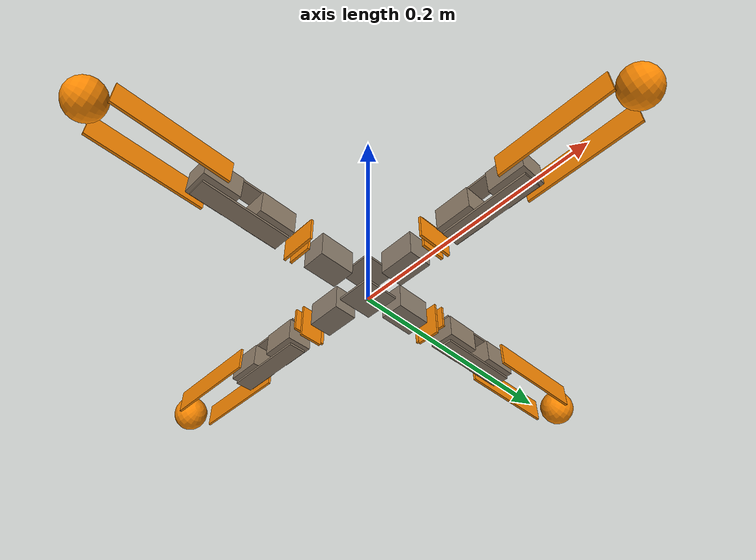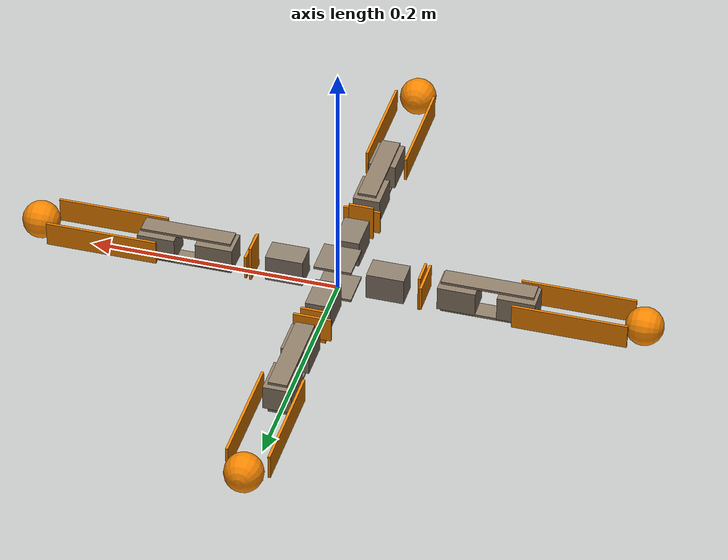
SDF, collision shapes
<?xml version="1.0" ?>
<!-- Generated using onshape-to-robot -->
<!-- OnShape https://cad.onshape.com/documents/11a7f59e37f711d732274fca/w/7807518dc67487ad405722c8/e/5233c6445c575366a6cc0d50 -->
<sdf version="1.7">
    <model name="quadruped_sdf">
        <!-- Link body -->
        <link name="body">
            <inertial>
                <pose relative_to="body">-2.68123e-18 7.95593e-19 0.0143384 0 0 0</pose>
                <mass>0.0808736</mass>
                <inertia>
                    <ixx>7.37408e-05</ixx>
                    <ixy>-7.58445e-21</ixy>
                    <ixz>-2.2764e-21</ixz>
                    <iyy>7.37408e-05</iyy>
                    <iyz>1.71779e-21</iyz>
                    <izz>0.000135878</izz>
                </inertia>
            </inertial>
            <pose>0 0 0 0 -0 0</pose>
            <!-- Part body -->
            <visual name="body_visual_mesh">
                <pose relative_to="body">-4.02184e-18 1.95168e-18 0.0143384 0 -0 0</pose>
                <geometry>
                    <mesh>
                        <uri>model://quadruped_sdf/body.stl</uri>
                    </mesh>
                </geometry>
                <material>
                    <ambient>0.546445 0.490703 0.424602 1.0</ambient>
                    <diffuse>0.546445 0.490703 0.424602 1.0</diffuse>
                    <specular>0.1 0.1 0.1 1</specular>
                    <emissive>0 0 0 0</emissive>
                </material>
            </visual>
            <collision name="body_collision_shapes_1">
                <pose relative_to="body">0 3.46945e-18 0.0275 3.14159 -0 0</pose>
                <geometry>
                    <box>
                        <size>0.03 0.03 0.002</size>
                    </box>
                </geometry>
            </collision>
            <collision name="body_collision_shapes_2">
                <pose relative_to="body">0 0 0.0011 0 -0 0</pose>
                <geometry>
                    <box>
                        <size>0.03 0.03 0.002</size>
                    </box>
                </geometry>
            </collision>
            <collision name="body_collision_shapes_3">
                <pose relative_to="body">-2.48001e-18 -0.0405 0.0143 0 -0 -3.14159</pose>
                <geometry>
                    <box>
                        <size>0.02 0.03 0.022</size>
                    </box>
                </geometry>
            </collision>
            <collision name="body_collision_shapes_4">
                <pose relative_to="body">0.0405 8.66205e-18 0.0143 0 -0 -1.5708</pose>
                <geometry>
                    <box>
                        <size>0.02 0.03 0.022</size>
                    </box>
                </geometry>
            </collision>
            <collision name="body_collision_shapes_5">
                <pose relative_to="body">-2.87964e-18 0.0405 0.0143 0 -0 8.32667e-16</pose>
                <geometry>
                    <box>
                        <size>0.02 0.03 0.022</size>
                    </box>
                </geometry>
            </collision>
            <collision name="body_collision_shapes_6">
                <pose relative_to="body">-0.0405 -2.24473e-18 0.0143 1.45547e-17 3.61151e-16 1.5708</pose>
                <geometry>
                    <box>
                        <size>0.02 0.03 0.022</size>
                    </box>
                </geometry>
            </collision>
        </link>
        <!-- Link doubleu -->
        <link name="doubleu">
            <inertial>
                <pose relative_to="doubleu">4.20868e-19 -0.0203 -0.01615 0 0 0</pose>
                <mass>0.00830698</mass>
                <inertia>
                    <ixx>2.78361e-06</ixx>
                    <ixy>-3.98268e-22</ixy>
                    <ixz>-3.70822e-22</ixz>
                    <iyy>1.9255e-06</iyy>
                    <iyz>1.87309e-22</iyz>
                    <izz>2.78361e-06</izz>
                </inertia>
            </inertial>
            <pose relative_to="leg1_a">0 0 0 0 -0 0</pose>
            <!-- Part doubleu -->
            <visual name="doubleu_visual_mesh">
                <pose relative_to="doubleu">4.20868e-19 -0.0203 -0.01615 -3.14159 1.53921e-15 1.5708</pose>
                <geometry>
                    <mesh>
                        <uri>model://quadruped_sdf/doubleu.stl</uri>
                    </mesh>
                </geometry>
                <material>
                    <ambient>0.972549 0.529412 0.00392157 1.0</ambient>
                    <diffuse>0.972549 0.529412 0.00392157 1.0</diffuse>
                    <specular>0.1 0.1 0.1 1</specular>
                    <emissive>0 0 0 0</emissive>
                </material>
            </visual>
            <collision name="doubleu_collision_shapes_1">
                <pose relative_to="doubleu">-2.25526e-31 -0.0191 -0.01615 1.5708 -1.84604e-32 4.13365e-30</pose>
                <geometry>
                    <box>
                        <size>0.02 0.03 0.002</size>
                    </box>
                </geometry>
            </collision>
            <collision name="doubleu_collision_shapes_2">
                <pose relative_to="doubleu">-4.23155e-18 -0.0215 -0.01615 -1.5708 -1.5708 0</pose>
                <geometry>
                    <box>
                        <size>0.02 0.03 0.002</size>
                    </box>
                </geometry>
            </collision>
        </link>
        <!-- Link platesblock -->
        <link name="platesblock">
            <inertial>
                <pose relative_to="platesblock">5.09544e-15 -0.0315 0.0150372 0 0 0</pose>
                <mass>0.0417755</mass>
                <inertia>
                    <ixx>2.98279e-05</ixx>
                    <ixy>-2.99773e-12</ixy>
                    <ixz>-9.43397e-21</ixz>
                    <iyy>4.6241e-06</iyy>
                    <iyz>2.38053e-19</iyz>
                    <izz>2.99828e-05</izz>
                </inertia>
            </inertial>
            <pose relative_to="leg1_b">0 0 0 0 -0 0</pose>
            <!-- Part platesblock -->
            <visual name="platesblock_visual_mesh">
                <pose relative_to="platesblock">5.09835e-15 -0.0315 0.0150372 -1.5708 -8.04912e-14 1.5708</pose>
                <geometry>
                    <mesh>
                        <uri>model://quadruped_sdf/platesblock.stl</uri>
                    </mesh>
                </geometry>
                <material>
                    <ambient>0.5601 0.491944 0.411121 1.0</ambient>
                    <diffuse>0.5601 0.491944 0.411121 1.0</diffuse>
                    <specular>0.1 0.1 0.1 1</specular>
                    <emissive>0 0 0 0</emissive>
                </material>
            </visual>
            <collision name="platesblock_collision_shapes_1">
                <pose relative_to="platesblock">0.0131 -0.0315 0.015 1.5708 -1.26802e-14 -1.5708</pose>
                <geometry>
                    <box>
                        <size>0.073 0.015 0.002</size>
                    </box>
                </geometry>
            </collision>
            <collision name="platesblock_collision_shapes_2">
                <pose relative_to="platesblock">-0.0132 -0.0315 0.015 1.5708 2.39183e-16 -1.5708</pose>
                <geometry>
                    <box>
                        <size>0.073 0.015 0.002</size>
                    </box>
                </geometry>
            </collision>
            <collision name="platesblock_collision_shapes_3">
                <pose relative_to="platesblock">1.32467e-15 -0.008 0.015 5.55112e-17 -5.55112e-17 1.32212e-13</pose>
                <geometry>
                    <box>
                        <size>0.02 0.03 0.022</size>
                    </box>
                </geometry>
            </collision>
            <collision name="platesblock_collision_shapes_4">
                <pose relative_to="platesblock">8.87894e-15 -0.055 0.015 1.07507e-14 5.55112e-17 -3.14159</pose>
                <geometry>
                    <box>
                        <size>0.02 0.03 0.022</size>
                    </box>
                </geometry>
            </collision>
        </link>
        <!-- Link leg -->
        <link name="leg">
            <inertial>
                <pose relative_to="leg">-1.68362e-17 0.0533786 0.015 0 0 0</pose>
                <mass>0.0154162</mass>
                <inertia>
                    <ixx>2.13816e-05</ixx>
                    <ixy>5.18659e-34</ixy>
                    <ixz>1.18621e-36</ixz>
                    <iyy>3.58407e-06</iyy>
                    <iyz>1.10982e-34</iyz>
                    <izz>1.88204e-05</izz>
                </inertia>
            </inertial>
            <pose relative_to="leg1_c">0 0 0 0 -0 0</pose>
            <!-- Part leg -->
            <visual name="leg_visual_mesh">
                <pose relative_to="leg">-1.73472e-17 0.0533786 0.015 -1.5708 -9.12418e-14 -1.5708</pose>
                <geometry>
                    <mesh>
                        <uri>model://quadruped_sdf/leg.stl</uri>
                    </mesh>
                </geometry>
                <material>
                    <ambient>0.972549 0.529412 0.00392157 1.0</ambient>
                    <diffuse>0.972549 0.529412 0.00392157 1.0</diffuse>
                    <specular>0.1 0.1 0.1 1</specular>
                    <emissive>0 0 0 0</emissive>
                </material>
            </visual>
            <collision name="leg_collision_shapes_1">
                <pose relative_to="leg">1.18955e-18 0.035 -0.001 1.5708 -2.25116e-32 3.79639e-30</pose>
                <geometry>
                    <box>
                        <size>0.02 0.002 0.09</size>
                    </box>
                </geometry>
            </collision>
            <collision name="leg_collision_shapes_2">
                <pose relative_to="leg">1.08167e-18 0.035 0.031 1.5708 -2.25116e-32 3.79639e-30</pose>
                <geometry>
                    <box>
                        <size>0.02 0.002 0.09</size>
                    </box>
                </geometry>
            </collision>
            <collision name="leg_collision_shapes_3">
                <pose relative_to="leg">1.69072e-18 0.09 0.015 1.5708 -2.25116e-32 3.79639e-30</pose>
                <geometry>
                    <sphere>
                        <radius>0.015</radius>
                    </sphere>
                </geometry>
            </collision>
        </link>
        <!-- Joint from platesblock to leg -->
        <joint name="leg1_c" type="revolute">
            <pose relative_to="platesblock">9.9365e-15 -0.063 5.75928e-16 1.07507e-14 5.55112e-17 3.14159</pose>
            <parent>platesblock</parent>
            <child>leg</child>
            <axis>
                <xyz>0 0 1</xyz>
                <limit>
                    <effort>10</effort>
                    <velocity>10</velocity>
                </limit>
                <lower>-3.141592653589793</lower>
                <upper>3.141592653589793</upper>
            </axis>
        </joint>
        <!-- Joint from doubleu to platesblock -->
        <joint name="leg1_b" type="revolute">
            <pose relative_to="doubleu">0.015 -0.0406 -0.01615 -1.11022e-16 -1.5708 0</pose>
            <parent>doubleu</parent>
            <child>platesblock</child>
            <axis>
                <xyz>0 0 1</xyz>
                <limit>
                    <effort>10</effort>
                    <velocity>10</velocity>
                </limit>
                <lower>-3.141592653589793</lower>
                <upper>3.141592653589793</upper>
            </axis>
        </joint>
        <!-- Joint from body to doubleu -->
        <joint name="leg1_a" type="revolute">
            <pose relative_to="body">-0.0485 -8.5303e-18 -0.0007 -3.14159 3.05183e-16 1.5708</pose>
            <parent>body</parent>
            <child>doubleu</child>
            <axis>
                <xyz>0 0 1</xyz>
                <limit>
                    <effort>10</effort>
                    <velocity>10</velocity>
                </limit>
                <lower>-3.141592653589793</lower>
                <upper>3.141592653589793</upper>
            </axis>
        </joint>
        <!-- Link doubleu_2 -->
        <link name="doubleu_2">
            <inertial>
                <pose relative_to="doubleu_2">-2.11219e-17 -0.0203 -0.015 0 0 0</pose>
                <mass>0.00830698</mass>
                <inertia>
                    <ixx>2.78361e-06</ixx>
                    <ixy>-2.00168e-21</ixy>
                    <ixz>-2.69222e-22</ixz>
                    <iyy>1.9255e-06</iyy>
                    <iyz>9.24504e-21</iyz>
                    <izz>2.78361e-06</izz>
                </inertia>
            </inertial>
            <pose relative_to="leg2_a">0 0 0 0 -0 0</pose>
            <!-- Part doubleu_2 -->
            <visual name="doubleu_2_visual_mesh">
                <pose relative_to="doubleu_2">-2.11219e-17 -0.0203 -0.015 3.14159 -1.8612e-16 -3.14159</pose>
                <geometry>
                    <mesh>
                        <uri>model://quadruped_sdf/doubleu_2.stl</uri>
                    </mesh>
                </geometry>
                <material>
                    <ambient>0.972549 0.529412 0.00392157 1.0</ambient>
                    <diffuse>0.972549 0.529412 0.00392157 1.0</diffuse>
                    <specular>0.1 0.1 0.1 1</specular>
                    <emissive>0 0 0 0</emissive>
                </material>
            </visual>
            <collision name="doubleu_2_collision_shapes_1">
                <pose relative_to="doubleu_2">-4.7317e-17 -0.0215 -0.015 -1.5708 -1.5708 0</pose>
                <geometry>
                    <box>
                        <size>0.02 0.03 0.002</size>
                    </box>
                </geometry>
            </collision>
            <collision name="doubleu_2_collision_shapes_2">
                <pose relative_to="doubleu_2">6.16298e-33 -0.0191 -0.015 1.5708 1.44282e-33 -2.03131e-32</pose>
                <geometry>
                    <box>
                        <size>0.02 0.03 0.002</size>
                    </box>
                </geometry>
            </collision>
        </link>
        <!-- Link platesblock_2 -->
        <link name="platesblock_2">
            <inertial>
                <pose relative_to="platesblock_2">-0.0315 -3.93756e-16 0.0150372 0 0 0</pose>
                <mass>0.0417755</mass>
                <inertia>
                    <ixx>4.6241e-06</ixx>
                    <ixy>2.99773e-12</ixy>
                    <ixz>1.27996e-20</ixz>
                    <iyy>2.98279e-05</iyy>
                    <iyz>-5.0039e-21</iyz>
                    <izz>2.99828e-05</izz>
                </inertia>
            </inertial>
            <pose relative_to="leg2_b">0 0 0 0 -0 0</pose>
            <!-- Part platesblock_2 -->
            <visual name="platesblock_2_visual_mesh">
                <pose relative_to="platesblock_2">-0.0315 -3.95517e-16 0.0150372 -1.5708 -1.5708 0</pose>
                <geometry>
                    <mesh>
                        <uri>model://quadruped_sdf/platesblock_2.stl</uri>
                    </mesh>
                </geometry>
                <material>
                    <ambient>0.5601 0.491944 0.411121 1.0</ambient>
                    <diffuse>0.5601 0.491944 0.411121 1.0</diffuse>
                    <specular>0.1 0.1 0.1 1</specular>
                    <emissive>0 0 0 0</emissive>
                </material>
            </visual>
            <collision name="platesblock_2_collision_shapes_1">
                <pose relative_to="platesblock_2">-0.0315 -0.0131 0.015 1.5708 -1.34152e-16 -3.14159</pose>
                <geometry>
                    <box>
                        <size>0.073 0.015 0.002</size>
                    </box>
                </geometry>
            </collision>
            <collision name="platesblock_2_collision_shapes_2">
                <pose relative_to="platesblock_2">-0.0315 0.0132 0.015 1.5708 7.63278e-16 -3.14159</pose>
                <geometry>
                    <box>
                        <size>0.073 0.015 0.002</size>
                    </box>
                </geometry>
            </collision>
            <collision name="platesblock_2_collision_shapes_3">
                <pose relative_to="platesblock_2">-0.008 3.4288e-16 0.015 -1.11022e-16 -1.11022e-16 -1.5708</pose>
                <geometry>
                    <box>
                        <size>0.02 0.03 0.022</size>
                    </box>
                </geometry>
            </collision>
            <collision name="platesblock_2_collision_shapes_4">
                <pose relative_to="platesblock_2">-0.055 -1.12171e-15 0.015 -2.33469e-15 1.11022e-16 1.5708</pose>
                <geometry>
                    <box>
                        <size>0.02 0.03 0.022</size>
                    </box>
                </geometry>
            </collision>
        </link>
        <!-- Link leg_2 -->
        <link name="leg_2">
            <inertial>
                <pose relative_to="leg_2">-1.72851e-17 0.0533786 0.015 0 0 0</pose>
                <mass>0.0154162</mass>
                <inertia>
                    <ixx>2.13816e-05</ixx>
                    <ixy>1.37976e-34</ixy>
                    <ixz>6.14915e-36</ixz>
                    <iyy>3.58407e-06</iyy>
                    <iyz>-4.08223e-36</iyz>
                    <izz>1.88204e-05</izz>
                </inertia>
            </inertial>
            <pose relative_to="leg2_c">0 0 0 0 -0 0</pose>
            <!-- Part leg_2 -->
            <visual name="leg_2_visual_mesh">
                <pose relative_to="leg_2">-1.73472e-17 0.0533786 0.015 3.14159 -1.5708 0</pose>
                <geometry>
                    <mesh>
                        <uri>model://quadruped_sdf/leg_2.stl</uri>
                    </mesh>
                </geometry>
                <material>
                    <ambient>0.972549 0.529412 0.00392157 1.0</ambient>
                    <diffuse>0.972549 0.529412 0.00392157 1.0</diffuse>
                    <specular>0.1 0.1 0.1 1</specular>
                    <emissive>0 0 0 0</emissive>
                </material>
            </visual>
            <collision name="leg_2_collision_shapes_1">
                <pose relative_to="leg_2">1.28349e-18 0.035 -0.001 1.5708 -3.9289e-32 4.93038e-32</pose>
                <geometry>
                    <box>
                        <size>0.02 0.002 0.09</size>
                    </box>
                </geometry>
            </collision>
            <collision name="leg_2_collision_shapes_2">
                <pose relative_to="leg_2">3.67559e-19 0.035 0.031 1.5708 -3.9289e-32 4.93038e-32</pose>
                <geometry>
                    <box>
                        <size>0.02 0.002 0.09</size>
                    </box>
                </geometry>
            </collision>
            <collision name="leg_2_collision_shapes_3">
                <pose relative_to="leg_2">1.10308e-18 0.09 0.015 1.5708 -3.9289e-32 4.93038e-32</pose>
                <geometry>
                    <sphere>
                        <radius>0.015</radius>
                    </sphere>
                </geometry>
            </collision>
        </link>
        <!-- Joint from platesblock_2 to leg_2 -->
        <joint name="leg2_c" type="revolute">
            <pose relative_to="platesblock_2">-0.063 -1.14492e-15 -2.60209e-17 -2.05714e-15 3.88578e-16 1.5708</pose>
            <parent>platesblock_2</parent>
            <child>leg_2</child>
            <axis>
                <xyz>0 0 1</xyz>
                <limit>
                    <effort>10</effort>
                    <velocity>10</velocity>
                </limit>
                <lower>-3.141592653589793</lower>
                <upper>3.141592653589793</upper>
            </axis>
        </joint>
        <!-- Joint from doubleu_2 to platesblock_2 -->
        <joint name="leg2_b" type="revolute">
            <pose relative_to="doubleu_2">0.015 -0.0406 -0.015 -1.5708 -5.77316e-15 1.5708</pose>
            <parent>doubleu_2</parent>
            <child>platesblock_2</child>
            <axis>
                <xyz>0 0 1</xyz>
                <limit>
                    <effort>10</effort>
                    <velocity>10</velocity>
                </limit>
                <lower>-3.141592653589793</lower>
                <upper>3.141592653589793</upper>
            </axis>
        </joint>
        <!-- Joint from body to doubleu_2 -->
        <joint name="leg2_a" type="revolute">
            <pose relative_to="body">-4.75344e-19 -0.0485 -0.0007 3.14159 1.8612e-16 -3.14159</pose>
            <parent>body</parent>
            <child>doubleu_2</child>
            <axis>
                <xyz>0 0 1</xyz>
                <limit>
                    <effort>10</effort>
                    <velocity>10</velocity>
                </limit>
                <lower>-3.141592653589793</lower>
                <upper>3.141592653589793</upper>
            </axis>
        </joint>
        <!-- Link doubleu_3 -->
        <link name="doubleu_3">
            <inertial>
                <pose relative_to="doubleu_3">-5.56769e-19 0.0203 -0.01615 0 0 0</pose>
                <mass>0.00830698</mass>
                <inertia>
                    <ixx>2.78361e-06</ixx>
                    <ixy>1.84599e-21</ixy>
                    <ixz>-2.19179e-21</ixz>
                    <iyy>1.9255e-06</iyy>
                    <iyz>-3.30468e-21</iyz>
                    <izz>2.78361e-06</izz>
                </inertia>
            </inertial>
            <pose relative_to="leg3_a">0 0 0 0 -0 0</pose>
            <!-- Part doubleu_3 -->
            <visual name="doubleu_3_visual_mesh">
                <pose relative_to="doubleu_3">-5.56769e-19 0.0203 -0.01615 -3.14159 8.88178e-16 1.5708</pose>
                <geometry>
                    <mesh>
                        <uri>model://quadruped_sdf/doubleu_3.stl</uri>
                    </mesh>
                </geometry>
                <material>
                    <ambient>0.972549 0.529412 0.00392157 1.0</ambient>
                    <diffuse>0.972549 0.529412 0.00392157 1.0</diffuse>
                    <specular>0.1 0.1 0.1 1</specular>
                    <emissive>0 0 0 0</emissive>
                </material>
            </visual>
            <collision name="doubleu_3_collision_shapes_1">
                <pose relative_to="doubleu_3">-6.18683e-18 0.0215 -0.01615 1.5708 1.5708 0</pose>
                <geometry>
                    <box>
                        <size>0.02 0.03 0.002</size>
                    </box>
                </geometry>
            </collision>
            <collision name="doubleu_3_collision_shapes_2">
                <pose relative_to="doubleu_3">1.16519e-32 0.0191 -0.01615 -1.5708 7.39557e-32 -1.14631e-30</pose>
                <geometry>
                    <box>
                        <size>0.02 0.03 0.002</size>
                    </box>
                </geometry>
            </collision>
        </link>
        <!-- Link platesblock_3 -->
        <link name="platesblock_3">
            <inertial>
                <pose relative_to="platesblock_3">-0.0315 -1.26282e-15 0.0150372 0 0 0</pose>
                <mass>0.0417755</mass>
                <inertia>
                    <ixx>4.6241e-06</ixx>
                    <ixy>2.99773e-12</ixy>
                    <ixz>1.21343e-20</ixz>
                    <iyy>2.98279e-05</iyy>
                    <iyz>-2.02021e-21</iyz>
                    <izz>2.99828e-05</izz>
                </inertia>
            </inertial>
            <pose relative_to="leg3_b">0 0 0 0 -0 0</pose>
            <!-- Part platesblock_3 -->
            <visual name="platesblock_3_visual_mesh">
                <pose relative_to="platesblock_3">-0.0315 -1.26288e-15 0.0150372 1.5708 7.52731e-14 -3.14159</pose>
                <geometry>
                    <mesh>
                        <uri>model://quadruped_sdf/platesblock_3.stl</uri>
                    </mesh>
                </geometry>
                <material>
                    <ambient>0.5601 0.491944 0.411121 1.0</ambient>
                    <diffuse>0.5601 0.491944 0.411121 1.0</diffuse>
                    <specular>0.1 0.1 0.1 1</specular>
                    <emissive>0 0 0 0</emissive>
                </material>
            </visual>
            <collision name="platesblock_3_collision_shapes_1">
                <pose relative_to="platesblock_3">-0.0315 -0.0131 0.015 1.5708 1.24904e-15 -3.14159</pose>
                <geometry>
                    <box>
                        <size>0.073 0.015 0.002</size>
                    </box>
                </geometry>
            </collision>
            <collision name="platesblock_3_collision_shapes_2">
                <pose relative_to="platesblock_3">-0.0315 0.0132 0.015 1.5708 -1.79949e-15 -3.14159</pose>
                <geometry>
                    <box>
                        <size>0.073 0.015 0.002</size>
                    </box>
                </geometry>
            </collision>
            <collision name="platesblock_3_collision_shapes_3">
                <pose relative_to="platesblock_3">-0.008 -1.00186e-16 0.015 6.48131e-29 3.33067e-16 -1.5708</pose>
                <geometry>
                    <box>
                        <size>0.02 0.03 0.022</size>
                    </box>
                </geometry>
            </collision>
            <collision name="platesblock_3_collision_shapes_4">
                <pose relative_to="platesblock_3">-0.055 -2.43769e-15 0.015 -4.49001e-15 -3.33067e-16 1.5708</pose>
                <geometry>
                    <box>
                        <size>0.02 0.03 0.022</size>
                    </box>
                </geometry>
            </collision>
        </link>
        <!-- Link leg_3 -->
        <link name="leg_3">
            <inertial>
                <pose relative_to="leg_3">-1.68795e-17 0.0533786 0.015 0 0 0</pose>
                <mass>0.0154162</mass>
                <inertia>
                    <ixx>2.13816e-05</ixx>
                    <ixy>3.68123e-35</ixy>
                    <ixz>6.16462e-36</ixz>
                    <iyy>3.58407e-06</iyy>
                    <iyz>-2.58096e-34</iyz>
                    <izz>1.88204e-05</izz>
                </inertia>
            </inertial>
            <pose relative_to="leg3_c">0 0 0 0 -0 0</pose>
            <!-- Part leg_3 -->
            <visual name="leg_3_visual_mesh">
                <pose relative_to="leg_3">-1.73472e-17 0.0533786 0.015 1.5708 7.57236e-14 1.5708</pose>
                <geometry>
                    <mesh>
                        <uri>model://quadruped_sdf/leg_3.stl</uri>
                    </mesh>
                </geometry>
                <material>
                    <ambient>0.972549 0.529412 0.00392157 1.0</ambient>
                    <diffuse>0.972549 0.529412 0.00392157 1.0</diffuse>
                    <specular>0.1 0.1 0.1 1</specular>
                    <emissive>0 0 0 0</emissive>
                </material>
            </visual>
            <collision name="leg_3_collision_shapes_1">
                <pose relative_to="leg_3">2.12482e-18 0.035 -0.001 1.5708 -0 0</pose>
                <geometry>
                    <box>
                        <size>0.02 0.002 0.09</size>
                    </box>
                </geometry>
            </collision>
            <collision name="leg_3_collision_shapes_2">
                <pose relative_to="leg_3">1.65589e-18 0.035 0.031 1.5708 -0 0</pose>
                <geometry>
                    <box>
                        <size>0.02 0.002 0.09</size>
                    </box>
                </geometry>
            </collision>
            <collision name="leg_3_collision_shapes_3">
                <pose relative_to="leg_3">1.71688e-18 0.09 0.015 1.5708 -0 0</pose>
                <geometry>
                    <sphere>
                        <radius>0.015</radius>
                    </sphere>
                </geometry>
            </collision>
        </link>
        <!-- Frame leg_tip (dummy link + fixed joint) -->
        <frame name="leg_tip">
            <pose relative_to="leg_3">-3.64292e-17 0.1053 0.015 1.5708 -0 -3.14159</pose>
        </frame>
        <!-- Joint from platesblock_3 to leg_3 -->
        <joint name="leg3_c" type="revolute">
            <pose relative_to="platesblock_3">-0.063 -2.5431e-15 6.41848e-17 4.50478e-16 -5.01649e-15 1.5708</pose>
            <parent>platesblock_3</parent>
            <child>leg_3</child>
            <axis>
                <xyz>0 0 1</xyz>
                <limit>
                    <effort>10</effort>
                    <velocity>10</velocity>
                </limit>
                <lower>-3.141592653589793</lower>
                <upper>3.141592653589793</upper>
            </axis>
        </joint>
        <!-- Joint from doubleu_3 to platesblock_3 -->
        <joint name="leg3_b" type="revolute">
            <pose relative_to="doubleu_3">-0.015 0.0406 -0.01615 -1.5708 -4.08007e-15 -1.5708</pose>
            <parent>doubleu_3</parent>
            <child>platesblock_3</child>
            <axis>
                <xyz>0 0 1</xyz>
                <limit>
                    <effort>10</effort>
                    <velocity>10</velocity>
                </limit>
                <lower>-3.141592653589793</lower>
                <upper>3.141592653589793</upper>
            </axis>
        </joint>
        <!-- Joint from body to doubleu_3 -->
        <joint name="leg3_a" type="revolute">
            <pose relative_to="body">0.0485 3.19754e-17 -0.0007 -3.14159 1.88738e-15 1.5708</pose>
            <parent>body</parent>
            <child>doubleu_3</child>
            <axis>
                <xyz>0 0 1</xyz>
                <limit>
                    <effort>10</effort>
                    <velocity>10</velocity>
                </limit>
                <lower>-3.141592653589793</lower>
                <upper>3.141592653589793</upper>
            </axis>
        </joint>
        <!-- Link doubleu_4 -->
        <link name="doubleu_4">
            <inertial>
                <pose relative_to="doubleu_4">-4.61075e-17 0.0203 -0.01615 0 0 0</pose>
                <mass>0.00830698</mass>
                <inertia>
                    <ixx>2.78361e-06</ixx>
                    <ixy>4.31663e-21</ixy>
                    <ixz>1.74197e-22</ixz>
                    <iyy>1.9255e-06</iyy>
                    <iyz>-3.17881e-20</iyz>
                    <izz>2.78361e-06</izz>
                </inertia>
            </inertial>
            <pose relative_to="leg4_a">0 0 0 0 -0 0</pose>
            <!-- Part doubleu_4 -->
            <visual name="doubleu_4_visual_mesh">
                <pose relative_to="doubleu_4">-4.61075e-17 0.0203 -0.01615 -3.14159 2.63142e-29 -3.14159</pose>
                <geometry>
                    <mesh>
                        <uri>model://quadruped_sdf/doubleu_4.stl</uri>
                    </mesh>
                </geometry>
                <material>
                    <ambient>0.972549 0.529412 0.00392157 1.0</ambient>
                    <diffuse>0.972549 0.529412 0.00392157 1.0</diffuse>
                    <specular>0.1 0.1 0.1 1</specular>
                    <emissive>0 0 0 0</emissive>
                </material>
            </visual>
            <collision name="doubleu_4_collision_shapes_1">
                <pose relative_to="doubleu_4">-9.72883e-17 0.0215 -0.01615 1.5708 1.5708 0</pose>
                <geometry>
                    <box>
                        <size>0.02 0.03 0.002</size>
                    </box>
                </geometry>
            </collision>
            <collision name="doubleu_4_collision_shapes_2">
                <pose relative_to="doubleu_4">0 0.0191 -0.01615 -1.5708 -2.49606e-45 -1.17576e-32</pose>
                <geometry>
                    <box>
                        <size>0.02 0.03 0.002</size>
                    </box>
                </geometry>
            </collision>
        </link>
        <!-- Link platesblock_4 -->
        <link name="platesblock_4">
            <inertial>
                <pose relative_to="platesblock_4">-0.0315 -5.44238e-16 0.0135372 0 0 0</pose>
                <mass>0.0417755</mass>
                <inertia>
                    <ixx>4.6241e-06</ixx>
                    <ixy>2.99773e-12</ixy>
                    <ixz>-6.82938e-20</ixz>
                    <iyy>2.98279e-05</iyy>
                    <iyz>8.10969e-21</iyz>
                    <izz>2.99828e-05</izz>
                </inertia>
            </inertial>
            <pose relative_to="leg4_b">0 0 0 0 -0 0</pose>
            <!-- Part platesblock_4 -->
            <visual name="platesblock_4_visual_mesh">
                <pose relative_to="platesblock_4">-0.0315 -5.46438e-16 0.0135372 -1.5708 1.5708 0</pose>
                <geometry>
                    <mesh>
                        <uri>model://quadruped_sdf/platesblock_4.stl</uri>
                    </mesh>
                </geometry>
                <material>
                    <ambient>0.5601 0.491944 0.411121 1.0</ambient>
                    <diffuse>0.5601 0.491944 0.411121 1.0</diffuse>
                    <specular>0.1 0.1 0.1 1</specular>
                    <emissive>0 0 0 0</emissive>
                </material>
            </visual>
            <collision name="platesblock_4_collision_shapes_1">
                <pose relative_to="platesblock_4">-0.0315 -0.0131 0.0135 1.5708 2.45263e-15 -3.14159</pose>
                <geometry>
                    <box>
                        <size>0.073 0.015 0.002</size>
                    </box>
                </geometry>
            </collision>
            <collision name="platesblock_4_collision_shapes_2">
                <pose relative_to="platesblock_4">-0.0315 0.0132 0.0135 1.5708 7.59235e-16 -3.14159</pose>
                <geometry>
                    <box>
                        <size>0.073 0.015 0.002</size>
                    </box>
                </geometry>
            </collision>
            <collision name="platesblock_4_collision_shapes_3">
                <pose relative_to="platesblock_4">-0.008 2.01842e-16 0.0135 6.39267e-16 6.08214e-15 -1.5708</pose>
                <geometry>
                    <box>
                        <size>0.02 0.03 0.022</size>
                    </box>
                </geometry>
            </collision>
            <collision name="platesblock_4_collision_shapes_4">
                <pose relative_to="platesblock_4">-0.055 -1.27734e-15 0.0135 -3.02239e-15 -5.18777e-15 1.5708</pose>
                <geometry>
                    <box>
                        <size>0.02 0.03 0.022</size>
                    </box>
                </geometry>
            </collision>
        </link>
        <!-- Link leg_4 -->
        <link name="leg_4">
            <inertial>
                <pose relative_to="leg_4">-1.83109e-17 -0.0533786 0.015 0 0 0</pose>
                <mass>0.0154162</mass>
                <inertia>
                    <ixx>2.13816e-05</ixx>
                    <ixy>2.07075e-34</ixy>
                    <ixz>-1.18725e-35</ixz>
                    <iyy>3.58407e-06</iyy>
                    <iyz>-1.43223e-36</iyz>
                    <izz>1.88204e-05</izz>
                </inertia>
            </inertial>
            <pose relative_to="leg4_c">0 0 0 0 -0 0</pose>
            <!-- Part leg_4 -->
            <visual name="leg_4_visual_mesh">
                <pose relative_to="leg_4">-1.9082e-17 -0.0533786 0.015 3.14159 1.5708 0</pose>
                <geometry>
                    <mesh>
                        <uri>model://quadruped_sdf/leg_4.stl</uri>
                    </mesh>
                </geometry>
                <material>
                    <ambient>0.972549 0.529412 0.00392157 1.0</ambient>
                    <diffuse>0.972549 0.529412 0.00392157 1.0</diffuse>
                    <specular>0.1 0.1 0.1 1</specular>
                    <emissive>0 0 0 0</emissive>
                </material>
            </visual>
            <collision name="leg_4_collision_shapes_1">
                <pose relative_to="leg_4">2.18025e-20 -0.035 0.031 -1.5708 -3.57453e-31 4.11687e-30</pose>
                <geometry>
                    <box>
                        <size>0.02 0.002 0.09</size>
                    </box>
                </geometry>
            </collision>
            <collision name="leg_4_collision_shapes_2">
                <pose relative_to="leg_4">5.49158e-19 -0.035 -0.001 -1.5708 -3.57453e-31 4.11687e-30</pose>
                <geometry>
                    <box>
                        <size>0.02 0.002 0.09</size>
                    </box>
                </geometry>
            </collision>
            <collision name="leg_4_collision_shapes_3">
                <pose relative_to="leg_4">-4.08409e-19 -0.09 0.015 -1.5708 -3.57453e-31 4.11687e-30</pose>
                <geometry>
                    <sphere>
                        <radius>0.015</radius>
                    </sphere>
                </geometry>
            </collision>
        </link>
        <!-- Joint from platesblock_4 to leg_4 -->
        <joint name="leg4_c" type="revolute">
            <pose relative_to="platesblock_4">-0.063 -1.22471e-15 -0.0015 2.88406e-15 5.735e-15 -1.5708</pose>
            <parent>platesblock_4</parent>
            <child>leg_4</child>
            <axis>
                <xyz>0 0 1</xyz>
                <limit>
                    <effort>10</effort>
                    <velocity>10</velocity>
                </limit>
                <lower>-3.141592653589793</lower>
                <upper>3.141592653589793</upper>
            </axis>
        </joint>
        <!-- Joint from doubleu_4 to platesblock_4 -->
        <joint name="leg4_b" type="revolute">
            <pose relative_to="doubleu_4">-0.015 0.0406 -0.01615 -1.5708 -9.65894e-15 -1.5708</pose>
            <parent>doubleu_4</parent>
            <child>platesblock_4</child>
            <axis>
                <xyz>0 0 1</xyz>
                <limit>
                    <effort>10</effort>
                    <velocity>10</velocity>
                </limit>
                <lower>-3.141592653589793</lower>
                <upper>3.141592653589793</upper>
            </axis>
        </joint>
        <!-- Joint from body to doubleu_4 -->
        <joint name="leg4_a" type="revolute">
            <pose relative_to="body">3.81639e-17 0.0485 -0.0007 -3.14159 -2.93851e-29 -3.14159</pose>
            <parent>body</parent>
            <child>doubleu_4</child>
            <axis>
                <xyz>0 0 1</xyz>
                <limit>
                    <effort>10</effort>
                    <velocity>10</velocity>
                </limit>
                <lower>-3.141592653589793</lower>
                <upper>3.141592653589793</upper>
            </axis>
        </joint>
    </model>
</sdf>
